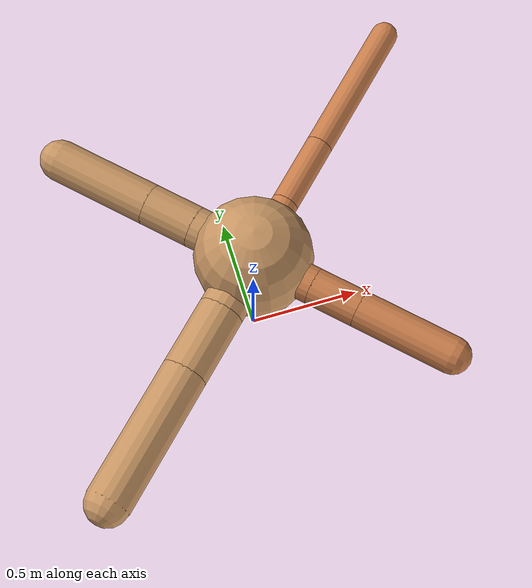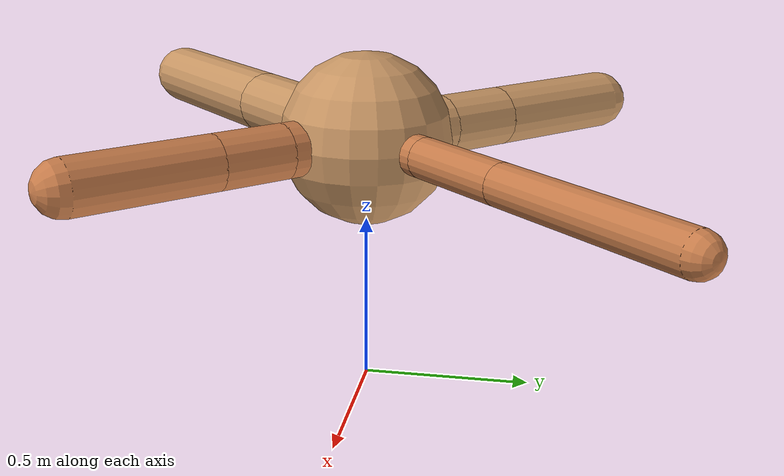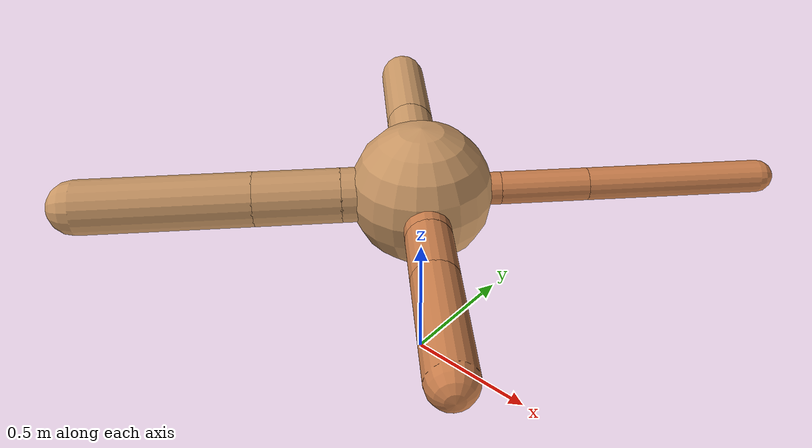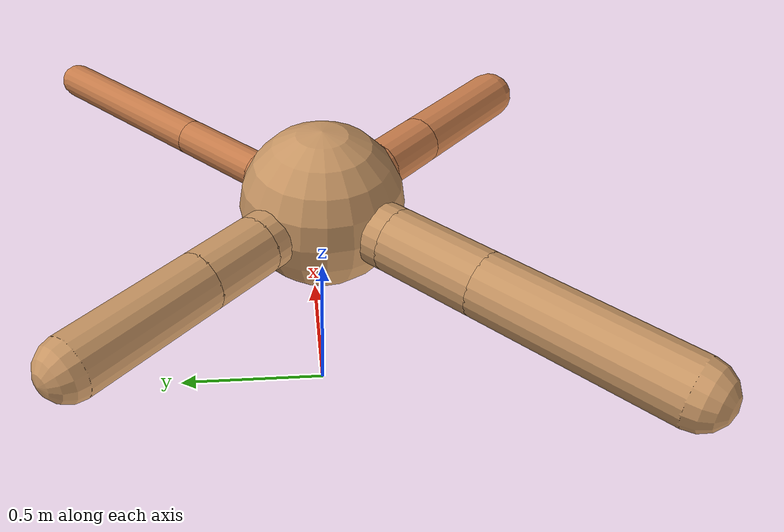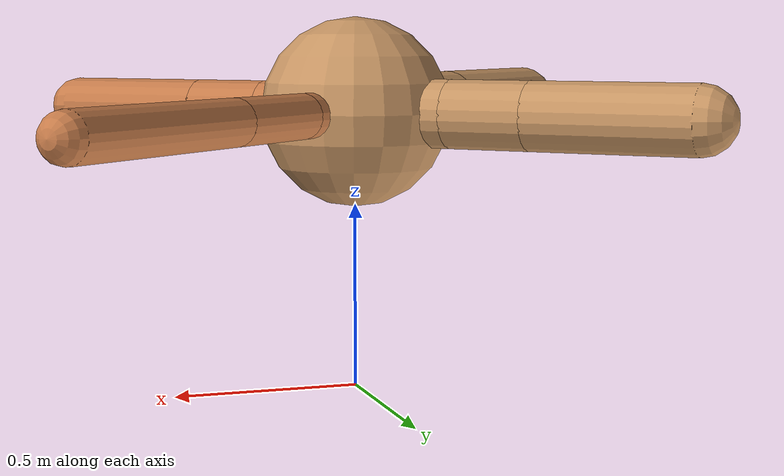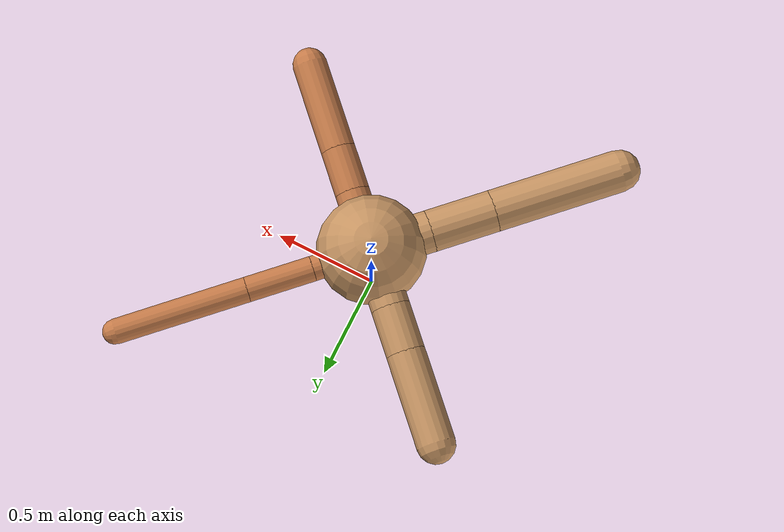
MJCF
<?xml version="1.0" ?>
<mujoco model="ant">

	<compiler angle="degree" coordinate="local" inertiafromgeom="true"/>

	<option integrator="RK4" timestep="0.01"/>

	<custom>

		<numeric data="0.0 0.0 0.55 1.0 0.0 0.0 0.0 0.0 1.0 0.0 -1.0 0.0 -1.0 0.0 1.0" name="init_qpos"/>

	</custom>

	<default>

		<joint armature="1" damping="1" limited="true"/>

		<geom conaffinity="0" condim="3" density="5.0" friction="1.5 0.1 0.1" margin="0.01" rgba="0.8 0.6 0.4 1"/>

	</default>

	<worldbody>

		<body name="torso" pos="0 0 0.75">

			<geom name="torso_geom" pos="0 0 0" size="0.25496295311795547" type="sphere"/>

			<!--joint armature="0" damping="0" limited="false" margin="0.01" name="root" pos="0 0 0" type="free"/-->

			<body name="front_left_leg" pos="0 0 0">

				<geom fromto="0 0 0 0.2 0.2 0" name="aux_1_geom" size="0.05871656709532986" type="capsule" rgba=".8 .5 .3 1"/>

				<body name="aux_1" pos="0.2 0.2 0">

					<joint axis="0 0 1" name="hip_1" pos="0.0 0.0 0.0" range="-40 40" type="hinge"/>

					<geom fromto="0 0 0 0.22276950497605805 0.22276950497605805 0" name="left_leg_geom" size="0.05871656709532986" type="capsule" rgba=".8 .5 .3 1"/>

					<body pos="0.22276950497605805 0.22276950497605805 0" name="front_left_foot">

						<joint axis="-1 1 0" name="ankle_1" pos="0.0 0.0 0.0" range="30 100" type="hinge"/>

						<geom fromto="0 0 0 0.4455390099521161 0.4455390099521161 0" name="left_ankle_geom" size="0.05871656709532986" type="capsule" rgba=".8 .5 .3 1"/>

					</body>

				</body>

			</body>

			<body name="front_right_leg" pos="0 0 0">

				<geom fromto="0 0 0 -0.2 0.2 0" name="aux_2_geom" size="0.09096026350496135" type="capsule"/>

				<body name="aux_2" pos="-0.2 0.2 0">

					<joint axis="0 0 1" name="hip_2" pos="0.0 0.0 0.0" range="-40 40" type="hinge"/>

					<geom fromto="0 0 0 -0.15604799571904995 0.15604799571904995 0" name="right_leg_geom" size="0.09096026350496135" type="capsule"/>

					<body pos="-0.15604799571904995 0.15604799571904995 0" name="front_right_foot">

						<joint axis="1 1 0" name="ankle_2" pos="0.0 0.0 0.0" range="-100 -30" type="hinge"/>

						<geom fromto="0 0 0 -0.3120959914380999 0.3120959914380999 0" name="right_ankle_geom" size="0.09096026350496135" type="capsule"/>

					</body>

				</body>

			</body>

			<body name="left_back_leg" pos="0 0 0">

				<geom fromto="0 0 0 -0.2 -0.2 0" name="aux_3_geom" size="0.09805045727473836" type="capsule"/>

				<body name="aux_3" pos="-0.2 -0.2 0">

					<joint axis="0 0 1" name="hip_3" pos="0.0 0.0 0.0" range="-40 40" type="hinge"/>

					<geom fromto="0 0 0 -0.21658028552977965 -0.21658028552977965 0" name="back_leg_geom" size="0.09805045727473836" type="capsule"/>

					<body pos="-0.21658028552977965 -0.21658028552977965 0" name="left_back_foot">

						<joint axis="-1 1 0" name="ankle_3" pos="0.0 0.0 0.0" range="-100 -30" type="hinge"/>

						<geom fromto="0 0 0 -0.4331605710595593 -0.4331605710595593 0" name="third_ankle_geom" size="0.09805045727473836" type="capsule"/>

					</body>

				</body>

			</body>

			<body name="right_back_leg" pos="0 0 0">

				<geom fromto="0 0 0 0.2 -0.2 0" name="aux_4_geom" size="0.08043954339202611" type="capsule" rgba=".8 .5 .3 1"/>

				<body name="aux_4" pos="0.2 -0.2 0">

					<joint axis="0 0 1" name="hip_4" pos="0.0 0.0 0.0" range="-40 40" type="hinge"/>

					<geom fromto="0 0 0 0.15095464214772453 -0.15095464214772453 0" name="rightback_leg_geom" size="0.08043954339202611" type="capsule" rgba=".8 .5 .3 1"/>

					<body pos="0.15095464214772453 -0.15095464214772453 0" name="right_back_foot">

						<joint axis="1 1 0" name="ankle_4" pos="0.0 0.0 0.0" range="30 100" type="hinge"/>

						<geom fromto="0 0 0 0.30190928429544905 -0.30190928429544905 0" name="fourth_ankle_geom" size="0.08043954339202611" type="capsule" rgba=".8 .5 .3 1"/>

					</body>

				</body>

			</body>

		</body>

	</worldbody>

	<actuator>

		<motor ctrllimited="true" ctrlrange="-1.0 1.0" joint="hip_4" gear="150"/>

		<motor ctrllimited="true" ctrlrange="-1.0 1.0" joint="ankle_4" gear="150"/>

		<motor ctrllimited="true" ctrlrange="-1.0 1.0" joint="hip_1" gear="150"/>

		<motor ctrllimited="true" ctrlrange="-1.0 1.0" joint="ankle_1" gear="150"/>

		<motor ctrllimited="true" ctrlrange="-1.0 1.0" joint="hip_2" gear="150"/>

		<motor ctrllimited="true" ctrlrange="-1.0 1.0" joint="ankle_2" gear="150"/>

		<motor ctrllimited="true" ctrlrange="-1.0 1.0" joint="hip_3" gear="150"/>

		<motor ctrllimited="true" ctrlrange="-1.0 1.0" joint="ankle_3" gear="150"/>

	</actuator>

</mujoco>
